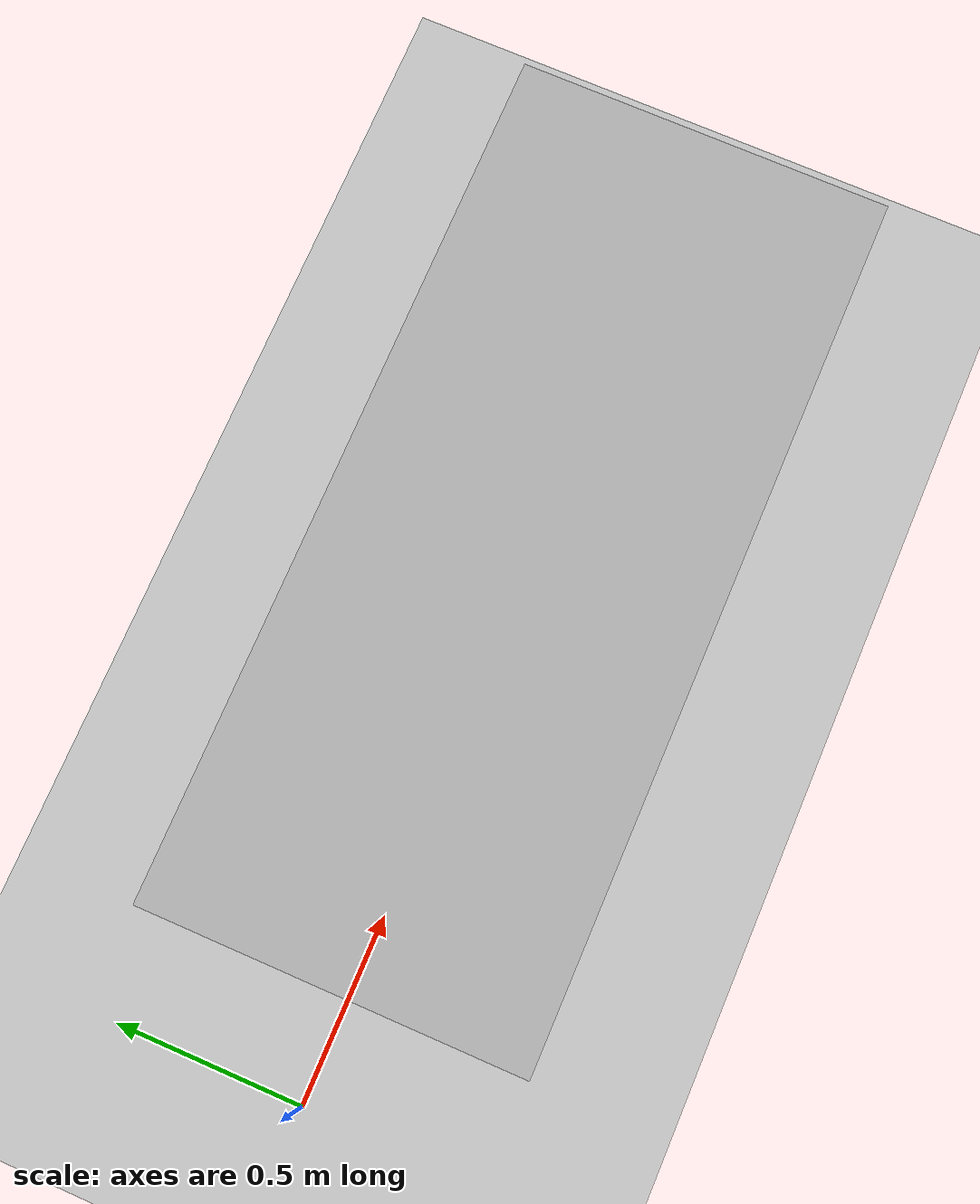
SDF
<?xml version="1.0" ?>
<sdf version="1.5">
  <world name="default">
    <gravity>0.000000 0.000000 -9.810000</gravity>
    <!-- A global light source -->
    <include>
      <uri>model://sun</uri>
    </include>
    <!-- A ground plane -->
    <include>
      <uri>model://ground_plane</uri>
    </include>
    <model name="table">
      <static>true</static>
      <pose>1.35 0 0.71 0 0 1.57</pose>
      <link name="link">
        <collision name="collision">
          <geometry>
            <box>
              <size>0.9 2.1 0.04</size>
            </box>
          </geometry>
        </collision>
        <visual name="visual">
          <geometry>
            <box>
              <size>0.9 2.1 0.04</size>
            </box>
          </geometry>
        </visual>
      </link>
    </model>
  </world>
</sdf>
